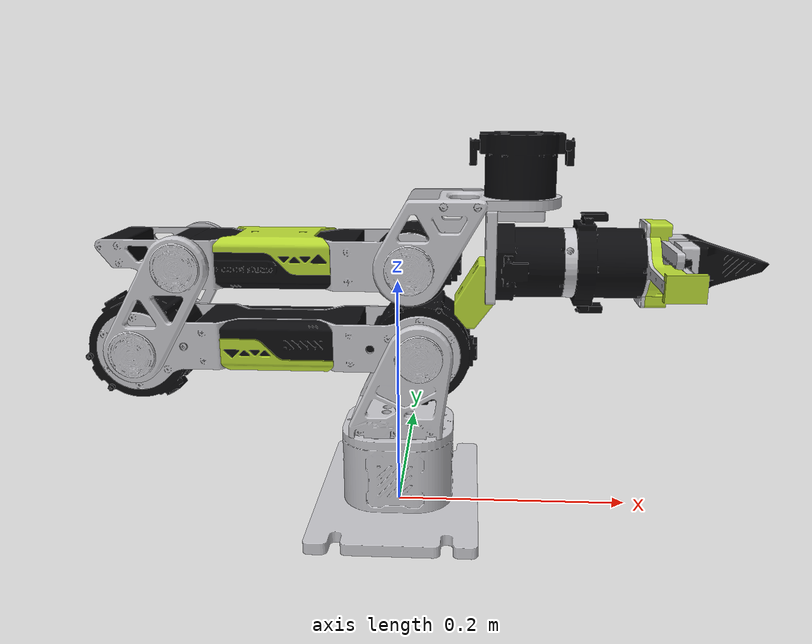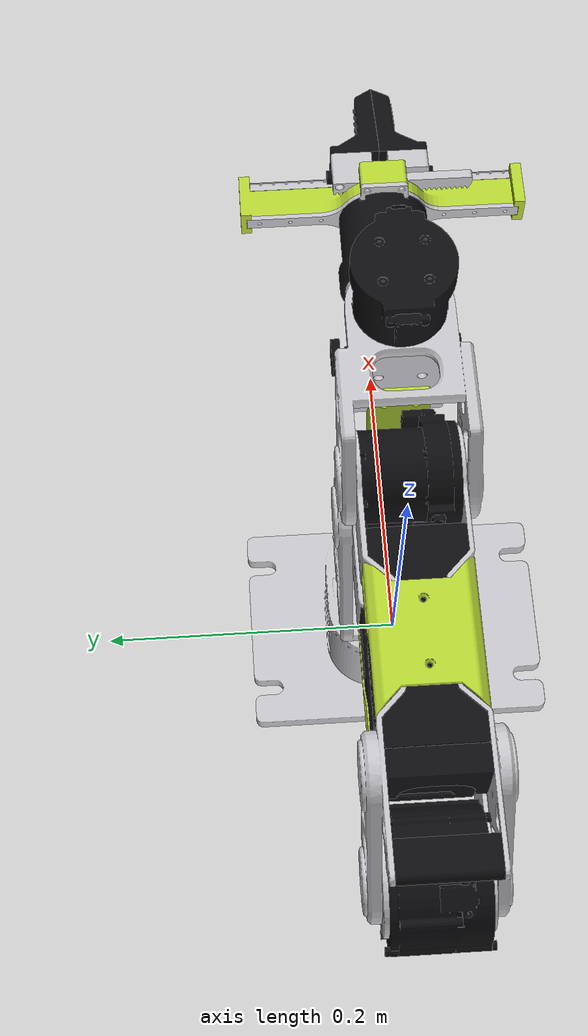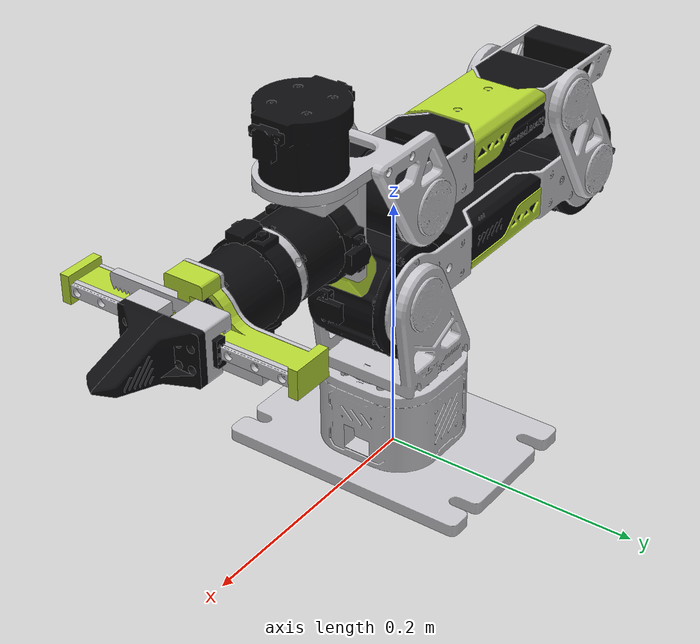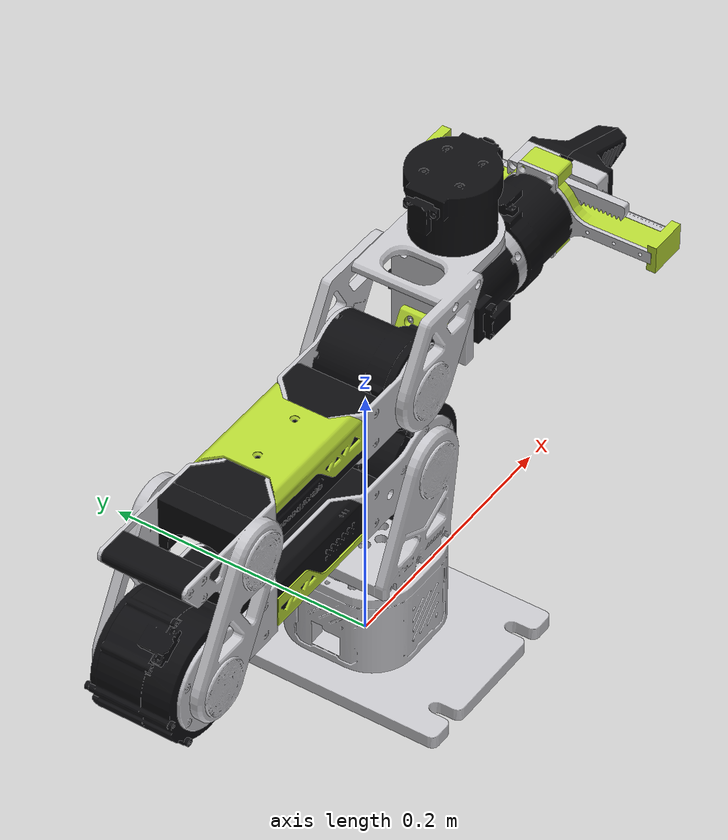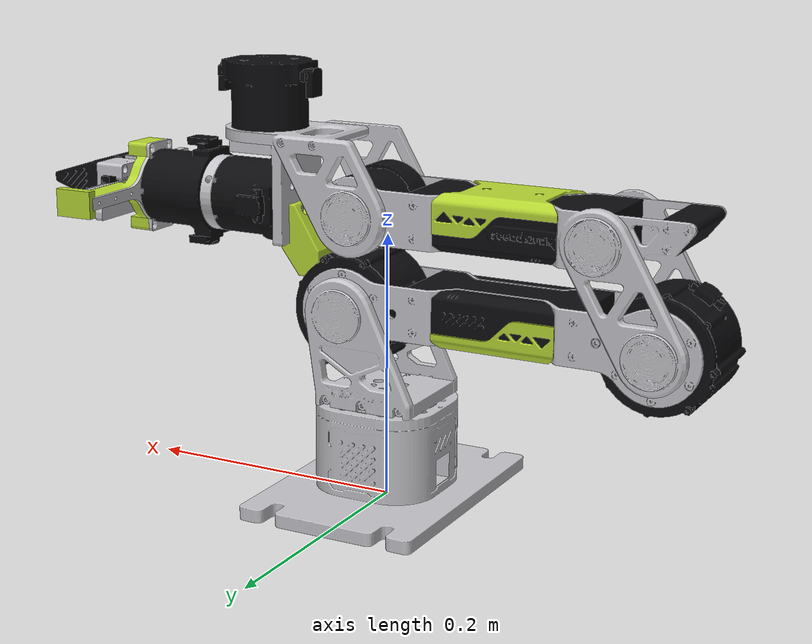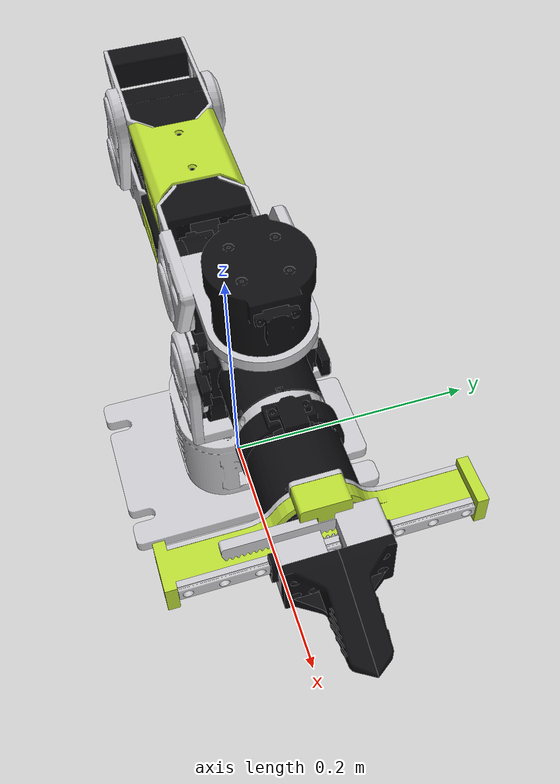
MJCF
<mujoco model="rebot_devarm">
  <default>
    <default class="robot">
      <default class="visual">
        <geom contype="0" conaffinity="0" group="2" />
      </default>
      <default class="collision">
        <geom contype="0" conaffinity="1" group="3" />
      </default>
      <joint armature="0.01" frictionloss="0.2" />
      <default class="rs06">
        <joint damping="5" />
        <position kp="900" kv="60" forcerange="-36 36" />
      </default>
      <default class="rs00">
        <joint damping="2" />
        <position kp="120" kv="10" forcerange="-14 14" />
      </default>
      <default class="gripper">
        <joint damping="1" />
        <position kp="100" kv="4" forcerange="-500 500" />
      </default>
    </default>
    <default class="floor">
      <geom type="plane" size="0 0 0.05" material="groundplane" />
    </default>
  </default>
  <compiler angle="radian" meshdir="assets" balanceinertia="true" autolimits="true" />
  <option integrator="implicitfast" cone="elliptic" impratio="10" />
  <visual>
    <global offwidth="3840" offheight="2160" />
  </visual>
  <worldbody>
    <body name="base_link" childclass="robot" pos="0 0 0">
      <inertial pos="2.87642e-06 -0.000122302 0.0243376" mass="1.1774" fullinertia="0.0013304 0.00213119 0.00275877 1e-08 0 0" />
      <geom type="mesh" class="collision" name="base_link_collision_base_link_convex" mesh="base_link_convex" />
      <body name="link1" pos="-0.00034283 -0.00098683 0.075">
        <inertial pos="0.00817652280320541 0.00122584211922395 0.0331419658967293" mass="0.4655" diaginertia="0.00025207 0.00015464 0.00023416" />
        <joint name="joint1" type="hinge" range="-2.8 2.8" axis="0 0 1" class="rs06" />
        <geom type="mesh" class="collision" name="link1_collision_link1_convex" mesh="link1_convex" />
        <body name="link2" pos="0.020343 0.027237 0.07" quat="0.7071 -0.7071 0 0">
          <inertial pos="-0.117864812717456 -0.00342226413942967 -0.0271551938501484" mass="1.552" diaginertia="0.000577466775 0.00988484698 0.0100847496" />
          <joint name="joint2" type="hinge" range="-3.14 0" axis="0 0 -1" class="rs06" />
          <geom type="mesh" class="collision" name="link2_collision_link2_convex" mesh="link2_convex" />
          <body name="link3" pos="-0.236 0 0">
            <inertial pos="0.103427154487799 -0.0664137912104635 -0.0271068687716704" mass="1.252" diaginertia="0.000551811337 0.00745889021 0.00764192742" />
            <joint name="joint3" type="hinge" range="-3.14 0" axis="0 0 1" class="rs06" />
            <geom type="mesh" class="collision" name="link3_collision_link3_convex" mesh="link3_convex" />
            <body name="link4" pos="0.228 -0.072746 0.0045">
              <inertial pos="0.0475544540775559 -0.0441113470158517 -0.0314111924918381" mass="0.46" diaginertia="0.000320508485 0.000524525455 0.000465171515" />
              <joint name="joint4" type="hinge" range="-1.79 1.69" axis="0 0 1" class="rs00" />
              <geom type="mesh" class="collision" name="link4_collision_link4_convex" mesh="link4_convex" />
              <body name="link5" pos="0.087 -0.048 -0.03075" quat="0.7071 -0.7071 0 0">
                <inertial pos="-0.0114400622356175 4.7907739316217E-06 0.0480487481818926" mass="0.20120457182895" diaginertia="9.84090046e-05 7.39220615e-05 7.10245279e-05" />
                <joint name="joint5" type="hinge" range="-1.57 1.57" axis="0 0 1" class="rs00" />
                <geom type="mesh" class="collision" name="link5_collision_link5_convex" mesh="link5_convex" />
                <body name="link6" pos="0.0365 0 0.048" quat="0.7071 0 0.7071 0">
                  <inertial pos="1.80196022567525E-05 2.48334592051007E-08 0.00434805764057547" mass="0.1" diaginertia="1.47424612e-05 1.45728507e-05 2.8476646e-05" />
                  <joint name="joint6" type="hinge" range="-3.14 3.14" axis="0 0 1" class="rs00" />
                  <geom type="mesh" class="collision" name="link6_collision_link6_convex" mesh="link6_convex" />
                  <body name="gripper_end" pos="0 0 0.16621" quat="0 0.7071 0 0.7071">
                    <inertial pos="-0.112751692515958 0.000128443070436966 -5.72602449749882E-06" mass="0.65" diaginertia="0.00037354 0.0001583 0.00045353" />
                    <geom type="mesh" class="collision" name="gripper_end_collision_gripper_end_convex" mesh="gripper_end_convex" />
                    <body name="gripper_left" pos="-0.041939 -7.3385E-05 0" quat="0.5 0.5 -0.5 0.5">
                      <inertial pos="-0.00218008703135955 0.0187090355934181 0.00932188568692145" mass="0.0752" diaginertia="1.09877964176176e-05 9.50146036720166e-06 9.30779991911125e-06" />
                      <joint name="joint_left" type="slide" range="0 0.05" axis="0 0 1" class="gripper" />
                      <geom type="mesh" class="collision" name="gripper_left_collision_gripper_left_convex" mesh="gripper_left_convex" />
                      <geom type="mesh" class="visual" material="black" mesh="pla_left" pos="0 0 0" quat="1 0 0 0" />
                      <geom type="mesh" class="visual" material="alum" mesh="cnc_left" pos="0 0 0" quat="1 0 0 0" />
                    </body>
                    <body name="gripper_right" pos="-0.041939 7.3385E-05 0" quat="0.5 -0.5 -0.5 -0.5">
                      <inertial pos="0.00218008703135955 -0.018709035593418 0.00932188568692151" mass="0.0752" diaginertia="1.09877964176176e-05 9.50146036720166e-06 9.30779991911125e-06" />
                      <joint name="joint_right" type="slide" range="0 0.0715" axis="0 0 1" class="gripper" />
                      <geom type="mesh" class="collision" name="gripper_right_collision_gripper_right_convex" mesh="gripper_right_convex" />
                      <geom type="mesh" class="visual" material="black" mesh="pla_right" pos="0 0 0" quat="1 0 0 0" />
                      <geom type="mesh" class="visual" material="alum" mesh="cnc_right" pos="0 0 0" quat="1 0 0 0" />
                    </body>
                    <geom type="mesh" class="visual" material="lime" mesh="pla7_green" pos="0 0 0" quat="1 0 0 0" />
                    <geom type="mesh" class="visual" material="alum" mesh="cnc7" pos="0 0 0" quat="1 0 0 0" />
                    <geom type="mesh" class="visual" material="black" mesh="motor_7" pos="0 0 0" quat="1 0 0 0" />
                  </body>
                  <geom type="mesh" class="visual" material="alum" mesh="link6" pos="0 0 0" quat="1 0 0 0" />
                </body>
                <geom type="mesh" class="visual" material="black" mesh="motor_6" pos="0 0 0" quat="1 0 0 0" />
                <geom type="mesh" class="visual" material="alum" mesh="cnc5" pos="0 0 0" quat="1 0 0 0" />
                <geom type="mesh" class="visual" material="lime" mesh="pla5_green" pos="0 0 0" quat="1 0 0 0" />
              </body>
              <geom type="mesh" class="visual" material="black" mesh="motor_5" pos="0 0 0" quat="1 0 0 0" />
              <geom type="mesh" class="visual" material="alum" mesh="cnc4" pos="0 0 0" quat="1 0 0 0" />
            </body>
            <geom type="mesh" class="visual" material="alum" mesh="cnc3" pos="0 0 0" quat="1 0 0 0" />
            <geom type="mesh" class="visual" material="black" mesh="motor_4" pos="0 0 0" quat="1 0 0 0" />
            <geom type="mesh" class="visual" material="black" mesh="pla3_black" pos="0 0 0" quat="1 0 0 0" />
            <geom type="mesh" class="visual" material="lime" mesh="pla3_green" pos="0 0 0" quat="1 0 0 0" />
          </body>
          <geom type="mesh" class="visual" material="black" mesh="motor_2_3" pos="0 0 0" quat="1 0 0 0" />
          <geom type="mesh" class="visual" material="alum" mesh="cnc2" pos="0 0 0" quat="1 0 0 0" />
          <geom type="mesh" class="visual" material="black" mesh="pla2_black" pos="0 0 0" quat="1 0 0 0" />
          <geom type="mesh" class="visual" material="lime" mesh="pla2_green" pos="0 0 0" quat="1 0 0 0" />
        </body>
        <geom type="mesh" class="visual" material="alum" mesh="link1" pos="0 0 0" quat="1 0 0 0" />
      </body>
      <geom type="mesh" class="visual" material="alum" mesh="base_link" pos="0 0 0" quat="1 0 0 0" />
    </body>
  </worldbody>
  <asset>
    <material name="alum" rgba="0.78 0.78 0.80 1" specular="0.4" shininess="0.3" />
    <material name="lime" rgba="0.72 0.85 0.20 1" specular="0.4" shininess="0.3" />
    <material name="black" rgba="0.05 0.05 0.06 1" specular="0.4" shininess="0.3" />
    <mesh name="base_link_base_link" file="base_link.STL" />
    <mesh name="link1_link1" file="link1.STL" />
    <mesh name="link6_link6" file="link6.STL" />
    <mesh name="base_link_convex" file="base_link_convex.stl" />
    <mesh name="link6_convex" file="link6_convex.stl" />
    <mesh name="gripper_left_convex" file="gripper_left_convex.stl" />
    <mesh name="link1_convex" file="link1_convex.stl" />
    <mesh name="link2_convex" file="link2_convex.stl" />
    <mesh name="gripper_end_convex" file="gripper_end_convex.stl" />
    <mesh name="link3_convex" file="link3_convex.stl" />
    <mesh name="link5_convex" file="link5_convex.stl" />
    <mesh name="gripper_right_convex" file="gripper_right_convex.stl" />
    <mesh name="link4_convex" file="link4_convex.stl" />
    <mesh name="link2_merged_link2" file="link2_merged_link2.obj" />
    <mesh name="link3_merged_link3" file="link3_merged_link3.obj" />
    <mesh name="link4_merged_link4" file="link4_merged_link4.obj" />
    <mesh name="link5_merged_link5" file="link5_merged_link5.obj" />
    <mesh name="gripper_end_merged_gripper" file="gripper_end_merged_gripper.obj" />
    <mesh name="gripper_left_merged_gripper" file="gripper_left_merged_gripper.obj" />
    <mesh name="gripper_right_merged_gripper" file="gripper_right_merged_gripper.obj" />
    <mesh name="base_link" file="base_link.STL" />
    <mesh name="cnc2" file="cnc2.STL" />
    <mesh name="cnc3" file="cnc3.STL" />
    <mesh name="cnc4" file="cnc4.STL" />
    <mesh name="cnc5" file="cnc5.STL" />
    <mesh name="cnc7" file="cnc7.STL" />
    <mesh name="cnc_left" file="cnc_left.STL" />
    <mesh name="cnc_right" file="cnc_right.STL" />
    <mesh name="link1" file="link1.STL" />
    <mesh name="link6" file="link6.STL" />
    <mesh name="motor_2_3" file="motor_2_3.STL" />
    <mesh name="motor_4" file="motor_4.STL" />
    <mesh name="motor_5" file="motor_5.STL" />
    <mesh name="motor_6" file="motor_6.STL" />
    <mesh name="motor_7" file="motor_7.STL" />
    <mesh name="pla2_black" file="pla2_black.STL" />
    <mesh name="pla2_green" file="pla2_green.STL" />
    <mesh name="pla3_black" file="pla3_black.STL" />
    <mesh name="pla3_green" file="pla3_green.STL" />
    <mesh name="pla5_green" file="pla5_green.STL" />
    <mesh name="pla7_green" file="pla7_green.STL" />
    <mesh name="pla_left" file="pla_left.STL" />
    <mesh name="pla_right" file="pla_right.STL" />
  </asset>
  <actuator>
    <position class="rs06" name="joint1" joint="joint1" />
    <position class="rs06" name="joint2" joint="joint2" />
    <position class="rs06" name="joint3" joint="joint3" />
    <position class="rs00" name="joint4" joint="joint4" />
    <position class="rs00" name="joint5" joint="joint5" />
    <position class="rs00" name="joint6" joint="joint6" />
    <position class="gripper" name="joint_left" joint="joint_left" />
    <position class="gripper" name="joint_right" joint="joint_right" />
  </actuator>
  <keyframe>
    <key name="home" qpos="0 0 0 0 0 0 0 0" ctrl="0 0 0 0 0 0 0 0" />
    <key name="raised" qpos="0 -0.7 -1.1 0 0 0 0 0" ctrl="0 -0.7 -1.1 0 0 0 0 0" />
  </keyframe>
</mujoco>
